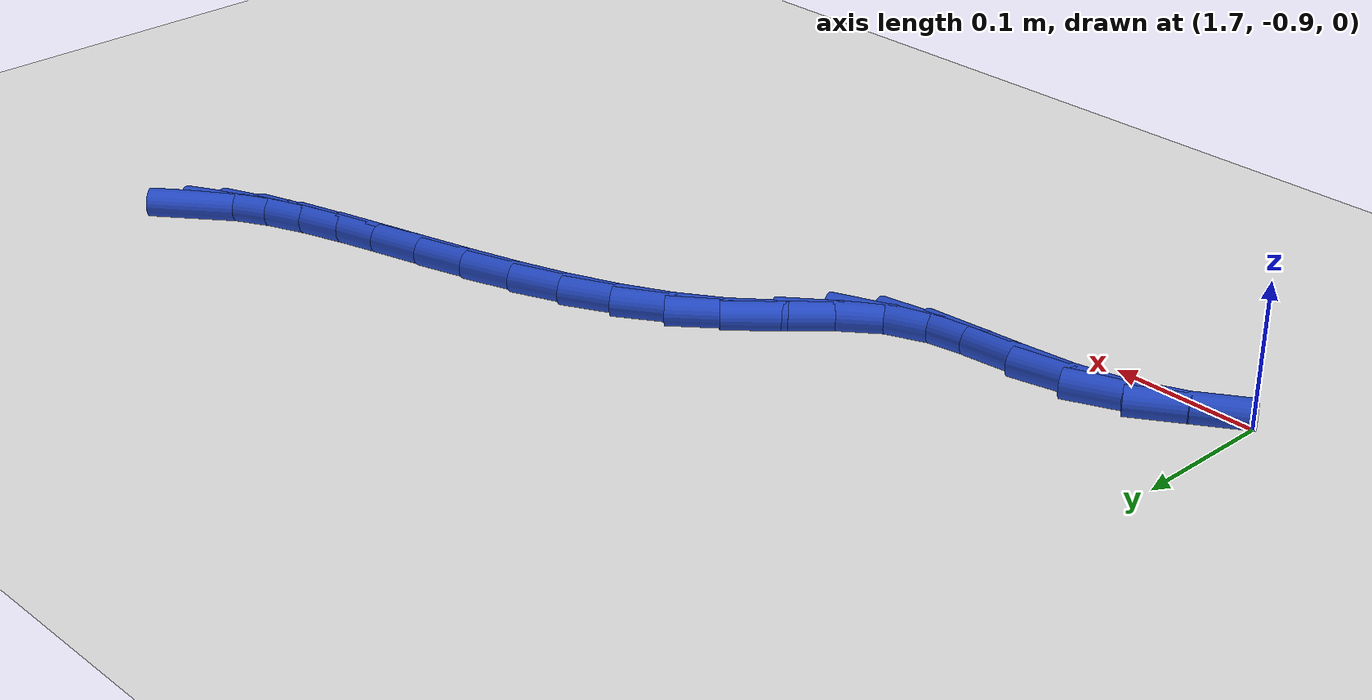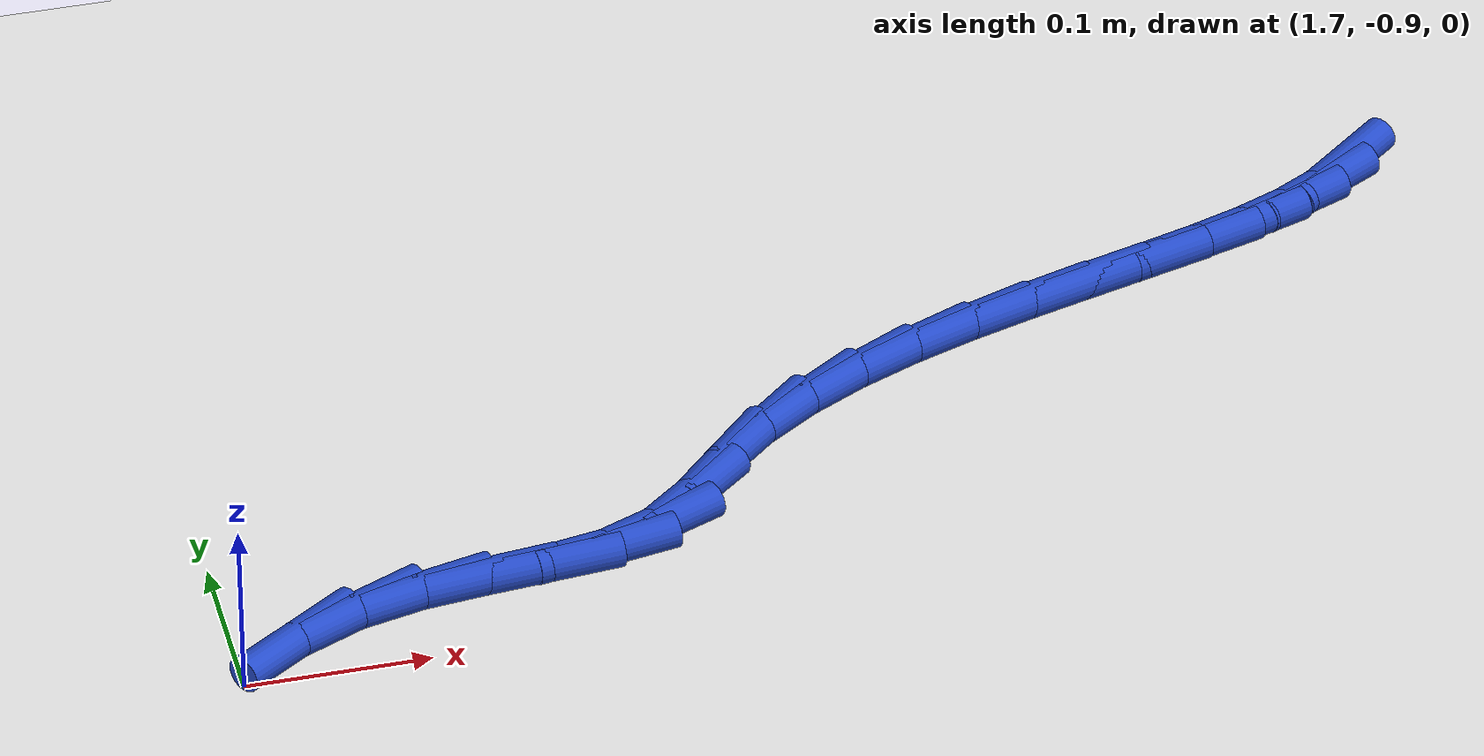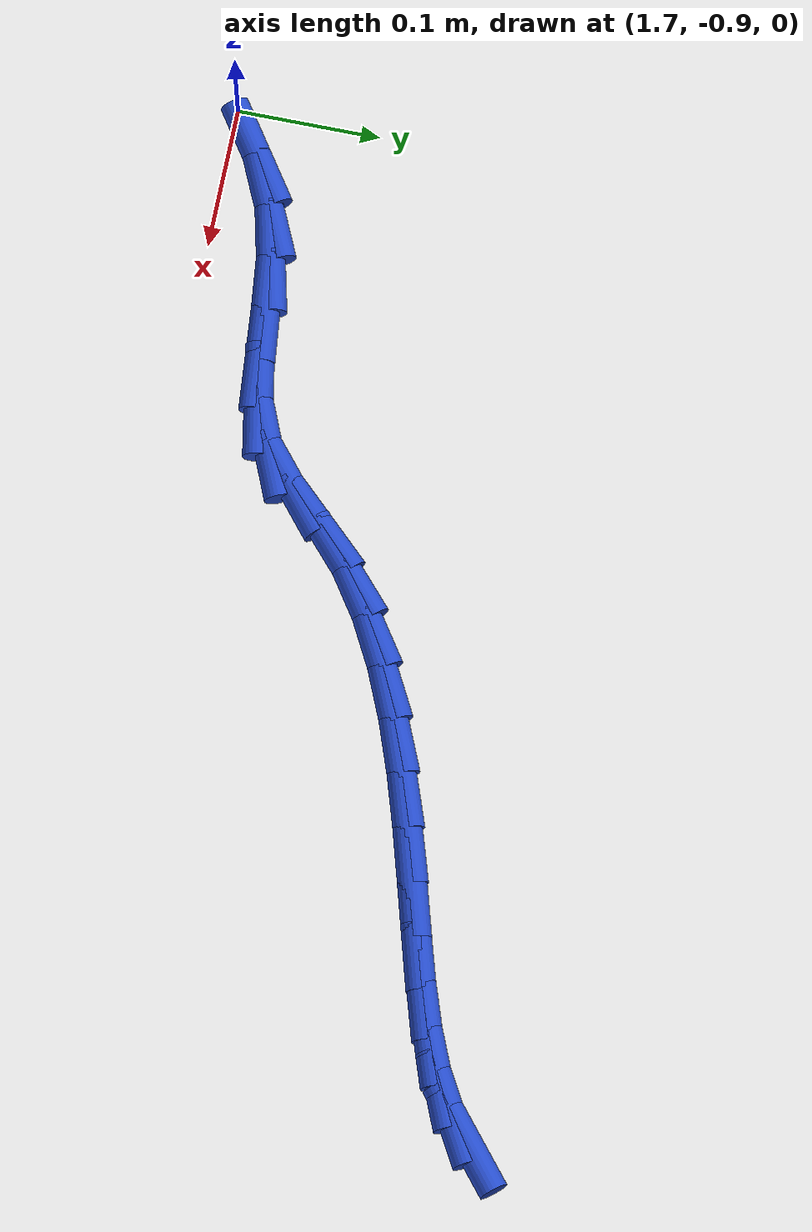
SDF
<sdf version="1.6">
 <world name="default">
  <model name="ground_plane">
   <static>1</static>
   <link name="link">
    <collision name="collision">
     <geometry><plane><normal>0 0 1</normal><size>100 100</size></plane></geometry>
     <surface><friction><ode><mu>100</mu><mu2>50</mu2></ode></friction></surface>
    </collision>
    <visual name="visual">
     <cast_shadows>0</cast_shadows>
     <geometry><plane><normal>0 0 1</normal><size>100 100</size></plane></geometry>
     <material>
      <script><uri>file://media/materials/scripts/gazebo.material</uri><name>Gazebo/WhiteGlow</name></script>
     </material>
    </visual>
   </link>
  </model>
  <model name="line">
   <link name="link_152">
    <pose>2.377109780890078 -0.6067518042564313 0.01 0 1.57 0.6879735500107113</pose>
    <collision name="collision">
     <geometry><cylinder><radius>0.01</radius><length>0.08</length></cylinder></geometry>
    </collision>
    <visual name="visual">
     <material>
      <script><name>Gazebo/Blue</name><uri>file://media/materials/scripts/gazebo.material</uri></script>
     </material>
     <geometry><cylinder><radius>0.01</radius><length>0.08</length></cylinder></geometry>
    </visual>
   </link>
   <link name="link_153">
    <pose>2.3591608240146615 -0.6215046794522864 0.01 0 1.57 0.512283443410528</pose>
    <collision name="collision">
     <geometry><cylinder><radius>0.01</radius><length>0.08</length></cylinder></geometry>
    </collision>
    <visual name="visual">
     <material>
      <script><name>Gazebo/Blue</name><uri>file://media/materials/scripts/gazebo.material</uri></script>
     </material>
     <geometry><cylinder><radius>0.01</radius><length>0.08</length></cylinder></geometry>
    </visual>
   </link>
   <link name="link_154">
    <pose>2.336470724327111 -0.6342646940553153 0.01 0 1.57 0.3980315060627045</pose>
    <collision name="collision">
     <geometry><cylinder><radius>0.01</radius><length>0.08</length></cylinder></geometry>
    </collision>
    <visual name="visual">
     <material>
      <script><name>Gazebo/Blue</name><uri>file://media/materials/scripts/gazebo.material</uri></script>
     </material>
     <geometry><cylinder><radius>0.01</radius><length>0.08</length></cylinder></geometry>
    </visual>
   </link>
   <link name="link_155">
    <pose>2.3097334994240013 -0.6455070226804228 0.01 0 1.57 0.3281161695578025</pose>
    <collision name="collision">
     <geometry><cylinder><radius>0.01</radius><length>0.08</length></cylinder></geometry>
    </collision>
    <visual name="visual">
     <material>
      <script><name>Gazebo/Blue</name><uri>file://media/materials/scripts/gazebo.material</uri></script>
     </material>
     <geometry><cylinder><radius>0.01</radius><length>0.08</length></cylinder></geometry>
    </visual>
   </link>
   <link name="link_156">
    <pose>2.279690581772645 -0.6557342740079302 0.01 0 1.57 0.28956018609015755</pose>
    <collision name="collision">
     <geometry><cylinder><radius>0.01</radius><length>0.08</length></cylinder></geometry>
    </collision>
    <visual name="visual">
     <material>
      <script><name>Gazebo/Blue</name><uri>file://media/materials/scripts/gazebo.material</uri></script>
     </material>
     <geometry><cylinder><radius>0.01</radius><length>0.08</length></cylinder></geometry>
    </visual>
   </link>
   <link name="link_157">
    <pose>2.247083403840359 -0.665449056718158 0.01 0 1.57 0.2747455979195077</pose>
    <collision name="collision">
     <geometry><cylinder><radius>0.01</radius><length>0.08</length></cylinder></geometry>
    </collision>
    <visual name="visual">
     <material>
      <script><name>Gazebo/Blue</name><uri>file://media/materials/scripts/gazebo.material</uri></script>
     </material>
     <geometry><cylinder><radius>0.01</radius><length>0.08</length></cylinder></geometry>
    </visual>
   </link>
   <link name="link_158">
    <pose>2.2126533980944565 -0.6751539794914274 0.01 0 1.57 0.27964141200542453</pose>
    <collision name="collision">
     <geometry><cylinder><radius>0.01</radius><length>0.08</length></cylinder></geometry>
    </collision>
    <visual name="visual">
     <material>
      <script><name>Gazebo/Blue</name><uri>file://media/materials/scripts/gazebo.material</uri></script>
     </material>
     <geometry><cylinder><radius>0.01</radius><length>0.08</length></cylinder></geometry>
    </visual>
   </link>
   <link name="link_159">
    <pose>2.1771419970022494 -0.6853516510080592 0.01 0 1.57 0.30261746003360673</pose>
    <collision name="collision">
     <geometry><cylinder><radius>0.01</radius><length>0.08</length></cylinder></geometry>
    </collision>
    <visual name="visual">
     <material>
      <script><name>Gazebo/Blue</name><uri>file://media/materials/scripts/gazebo.material</uri></script>
     </material>
     <geometry><cylinder><radius>0.01</radius><length>0.08</length></cylinder></geometry>
    </visual>
   </link>
   <link name="link_160">
    <pose>2.141290633031054 -0.6965446799483743 0.01 0 1.57 0.34378223604074426</pose>
    <collision name="collision">
     <geometry><cylinder><radius>0.01</radius><length>0.08</length></cylinder></geometry>
    </collision>
    <visual name="visual">
     <material>
      <script><name>Gazebo/Blue</name><uri>file://media/materials/scripts/gazebo.material</uri></script>
     </material>
     <geometry><cylinder><radius>0.01</radius><length>0.08</length></cylinder></geometry>
    </visual>
   </link>
   <link name="link_161">
    <pose>2.1058407386481828 -0.7092356749926938 0.01 0 1.57 0.404610359396615</pose>
    <collision name="collision">
     <geometry><cylinder><radius>0.01</radius><length>0.08</length></cylinder></geometry>
    </collision>
    <visual name="visual">
     <material>
      <script><name>Gazebo/Blue</name><uri>file://media/materials/scripts/gazebo.material</uri></script>
     </material>
     <geometry><cylinder><radius>0.01</radius><length>0.08</length></cylinder></geometry>
    </visual>
   </link>
   <link name="link_162">
    <pose>2.07153374632095 -0.7239272448213384 0.01 0 1.57 0.4876172632635774</pose>
    <collision name="collision">
     <geometry><cylinder><radius>0.01</radius><length>0.08</length></cylinder></geometry>
    </collision>
    <visual name="visual">
     <material>
      <script><name>Gazebo/Blue</name><uri>file://media/materials/scripts/gazebo.material</uri></script>
     </material>
     <geometry><cylinder><radius>0.01</radius><length>0.08</length></cylinder></geometry>
    </visual>
   </link>
   <link name="link_163">
    <pose>2.0391110885166706 -0.7411219981146293 0.01 0 1.57 0.5957676142429121</pose>
    <collision name="collision">
     <geometry><cylinder><radius>0.01</radius><length>0.08</length></cylinder></geometry>
    </collision>
    <visual name="visual">
     <material>
      <script><name>Gazebo/Blue</name><uri>file://media/materials/scripts/gazebo.material</uri></script>
     </material>
     <geometry><cylinder><radius>0.01</radius><length>0.08</length></cylinder></geometry>
    </visual>
   </link>
   <link name="link_164">
    <pose>2.0093141977026576 -0.7613225435528874 0.01 0 1.57 0.729981413018113</pose>
    <collision name="collision">
     <geometry><cylinder><radius>0.01</radius><length>0.08</length></cylinder></geometry>
    </collision>
    <visual name="visual">
     <material>
      <script><name>Gazebo/Blue</name><uri>file://media/materials/scripts/gazebo.material</uri></script>
     </material>
     <geometry><cylinder><radius>0.01</radius><length>0.08</length></cylinder></geometry>
    </visual>
   </link>
   <link name="link_165">
    <pose>1.9828608594490524 -0.7849952142085428 0.01 0 1.57 0.8093037751180083</pose>
    <collision name="collision">
     <geometry><cylinder><radius>0.01</radius><length>0.08</length></cylinder></geometry>
    </collision>
    <visual name="visual">
     <material>
      <script><name>Gazebo/Blue</name><uri>file://media/materials/scripts/gazebo.material</uri></script>
     </material>
     <geometry><cylinder><radius>0.01</radius><length>0.08</length></cylinder></geometry>
    </visual>
   </link>
   <link name="link_166">
    <pose>1.9588730275183581 -0.8101582516139753 0.01 0 1.57 0.6922597794082362</pose>
    <collision name="collision">
     <geometry><cylinder><radius>0.01</radius><length>0.08</length></cylinder></geometry>
    </collision>
    <visual name="visual">
     <material>
      <script><name>Gazebo/Blue</name><uri>file://media/materials/scripts/gazebo.material</uri></script>
     </material>
     <geometry><cylinder><radius>0.01</radius><length>0.08</length></cylinder></geometry>
    </visual>
   </link>
   <link name="link_167">
    <pose>1.9338919322741774 -0.8308711345272587 0.01 0 1.57 0.39695983233290455</pose>
    <collision name="collision">
     <geometry><cylinder><radius>0.01</radius><length>0.08</length></cylinder></geometry>
    </collision>
    <visual name="visual">
     <material>
      <script><name>Gazebo/Blue</name><uri>file://media/materials/scripts/gazebo.material</uri></script>
     </material>
     <geometry><cylinder><radius>0.01</radius><length>0.08</length></cylinder></geometry>
    </visual>
   </link>
   <link name="link_168">
    <pose>1.9052024854119676 -0.8428981579826561 0.01 0 1.57 0.17551816147722654</pose>
    <collision name="collision">
     <geometry><cylinder><radius>0.01</radius><length>0.08</length></cylinder></geometry>
    </collision>
    <visual name="visual">
     <material>
      <script><name>Gazebo/Blue</name><uri>file://media/materials/scripts/gazebo.material</uri></script>
     </material>
     <geometry><cylinder><radius>0.01</radius><length>0.08</length></cylinder></geometry>
    </visual>
   </link>
   <link name="link_169">
    <pose>1.8732027194973508 -0.8485730933015155 0.01 0 1.57 0.08609217704974716</pose>
    <collision name="collision">
     <geometry><cylinder><radius>0.01</radius><length>0.08</length></cylinder></geometry>
    </collision>
    <visual name="visual">
     <material>
      <script><name>Gazebo/Blue</name><uri>file://media/materials/scripts/gazebo.material</uri></script>
     </material>
     <geometry><cylinder><radius>0.01</radius><length>0.08</length></cylinder></geometry>
    </visual>
   </link>
   <link name="link_170">
    <pose>1.8389082164492367 -0.8515328979009791 0.01 0 1.57 0.10868534493503916</pose>
    <collision name="collision">
     <geometry><cylinder><radius>0.01</radius><length>0.08</length></cylinder></geometry>
    </collision>
    <visual name="visual">
     <material>
      <script><name>Gazebo/Blue</name><uri>file://media/materials/scripts/gazebo.material</uri></script>
     </material>
     <geometry><cylinder><radius>0.01</radius><length>0.08</length></cylinder></geometry>
    </visual>
   </link>
   <link name="link_171">
    <pose>1.8033345581865363 -0.8554145291981884 0.01 0 1.57 0.2313054991251169</pose>
    <collision name="collision">
     <geometry><cylinder><radius>0.01</radius><length>0.08</length></cylinder></geometry>
    </collision>
    <visual name="visual">
     <material>
      <script><name>Gazebo/Blue</name><uri>file://media/materials/scripts/gazebo.material</uri></script>
     </material>
     <geometry><cylinder><radius>0.01</radius><length>0.08</length></cylinder></geometry>
    </visual>
   </link>
   <link name="link_172">
    <pose>1.767497326628157 -0.8638549446102848 0.01 0 1.57 0.42644711810478336</pose>
    <collision name="collision">
     <geometry><cylinder><radius>0.01</radius><length>0.08</length></cylinder></geometry>
    </collision>
    <visual name="visual">
     <material>
      <script><name>Gazebo/Blue</name><uri>file://media/materials/scripts/gazebo.material</uri></script>
     </material>
     <geometry><cylinder><radius>0.01</radius><length>0.08</length></cylinder></geometry>
    </visual>
   </link>
   <link name="link_173">
    <pose>1.732295256487582 -0.8798482247416215 0.01 0 1.57 0.5970779855336994</pose>
    <collision name="collision">
     <geometry><cylinder><radius>0.01</radius><length>0.08</length></cylinder></geometry>
    </collision>
    <visual name="visual">
     <material>
      <script><name>Gazebo/Blue</name><uri>file://media/materials/scripts/gazebo.material</uri></script>
     </material>
     <geometry><cylinder><radius>0.01</radius><length>0.08</length></cylinder></geometry>
    </visual>
   </link>
  </model>
 </world>
</sdf>
